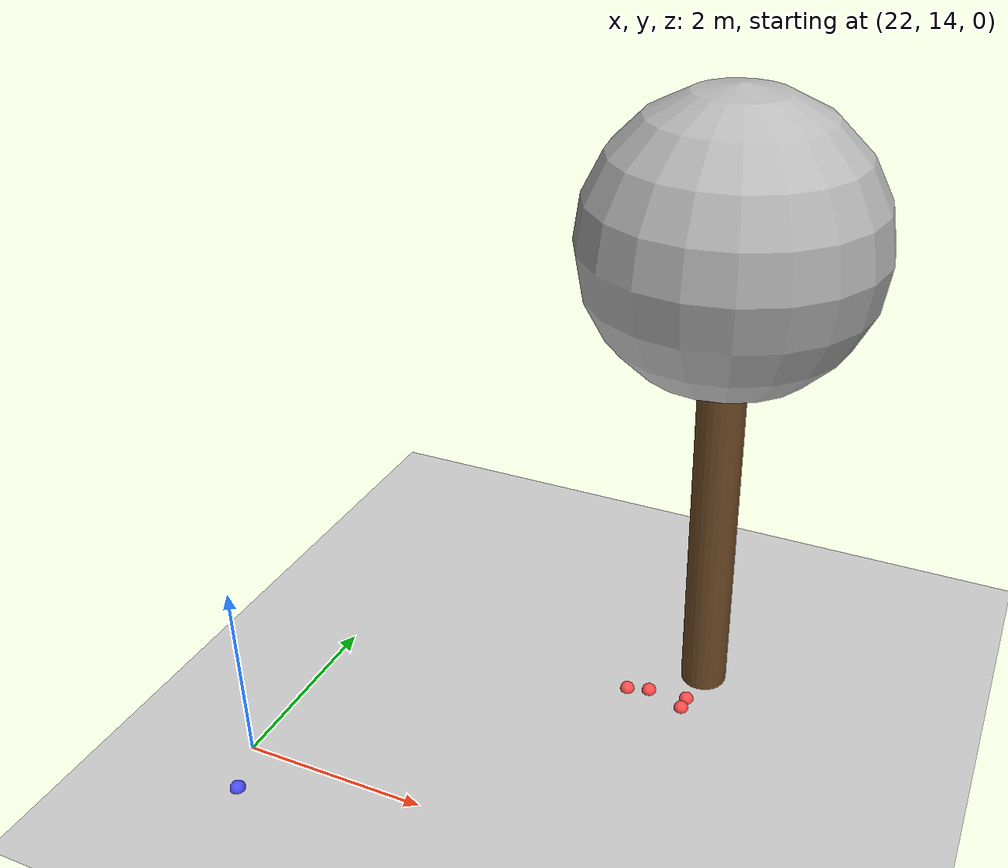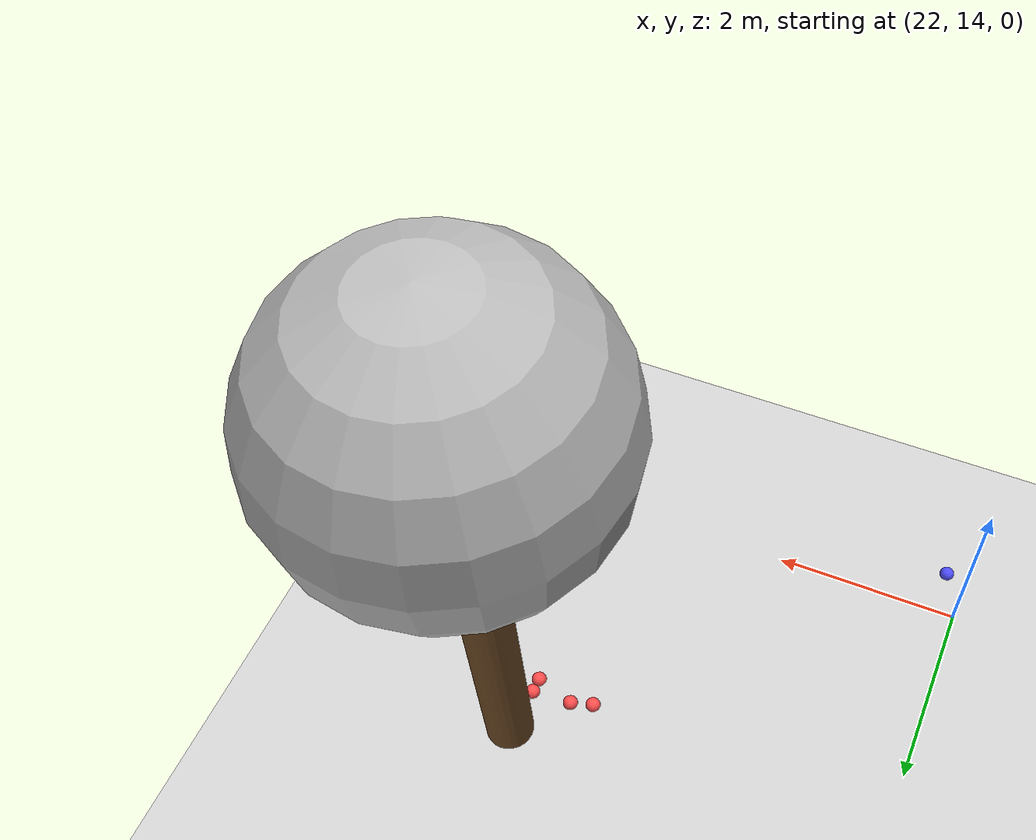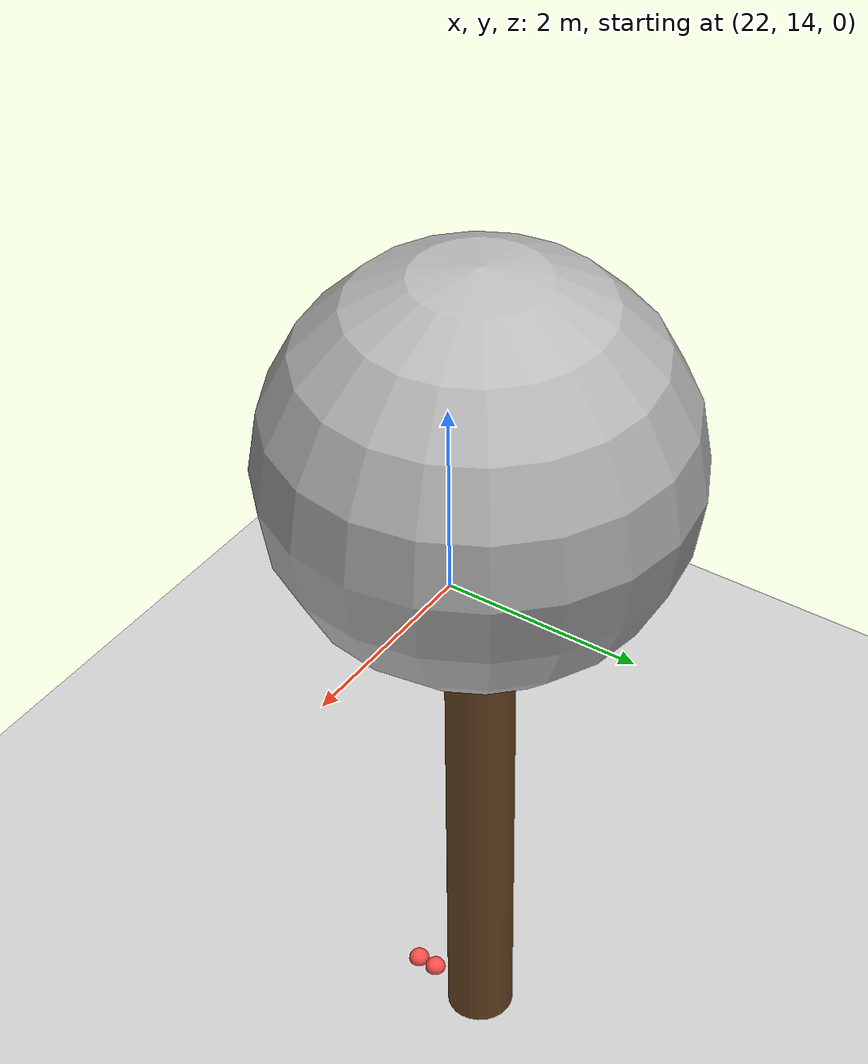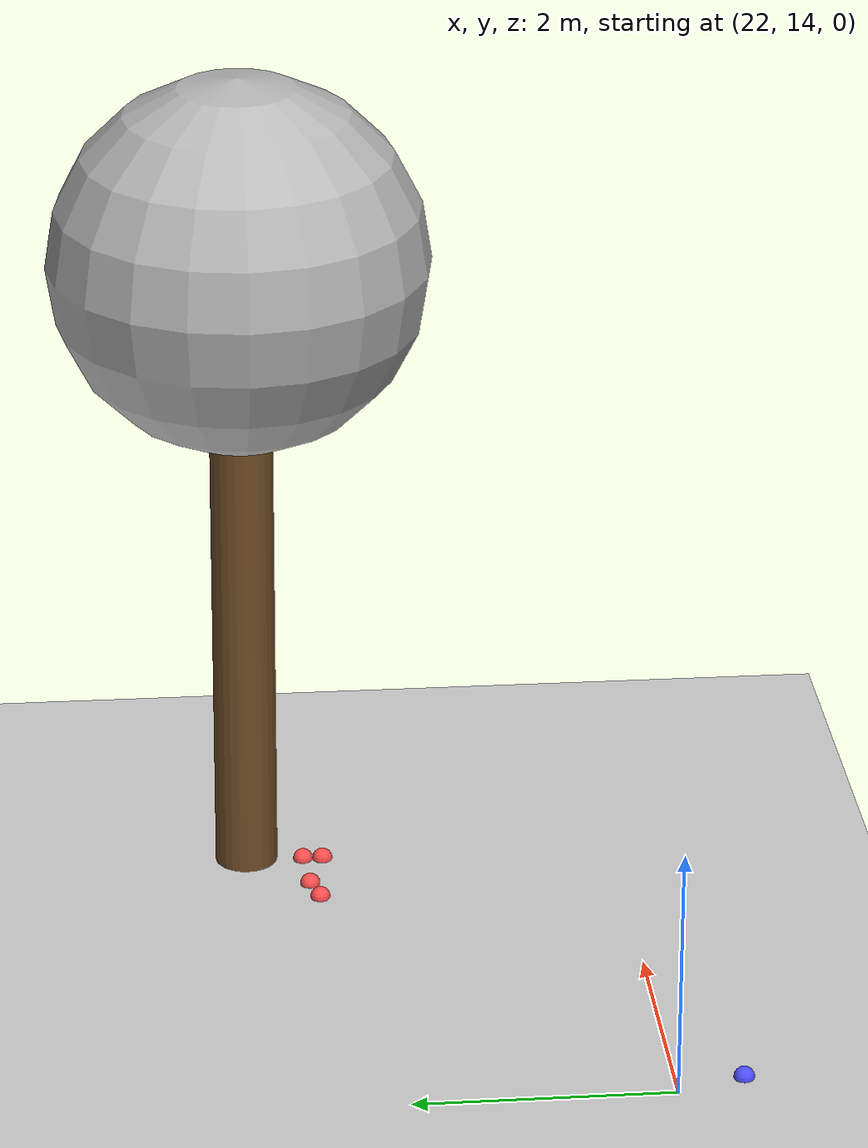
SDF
<sdf version="1.7">
 <world name="default">
  <model name="ground_plane">
   <static>1</static>
   <link name="link">
    <collision name="collision">
     <geometry><plane><normal>0 0 1</normal><size>100 100</size></plane></geometry>
     <surface>
      <contact><collide_bitmask>65535</collide_bitmask></contact>
      <friction><ode><mu>100</mu><mu2>50</mu2></ode></friction>
     </surface>
    </collision>
    <visual name="visual">
     <cast_shadows>0</cast_shadows>
     <geometry><plane><normal>0 0 1</normal><size>100 100</size></plane></geometry>
     <material>
      <script><uri>file://media/materials/scripts/gazebo.material</uri><name>Gazebo/Grey</name></script>
     </material>
    </visual>
   </link>
  </model>
  <model name="tree_simple_56">
   <static>1</static>
   <link name="link">
    <pose>0 0 0.1 0 -0 0</pose>
    <inertial>
     <mass>666</mass>
     <inertia>
      <ixx>0.0861167</ixx>
      <ixy>0</ixy>
      <ixz>0</ixz>
      <iyy>0.0861167</iyy>
      <iyz>0</iyz>
      <izz>0.0861167</izz>
     </inertia>
    </inertial>
    <collision name="collision_trunk">
     <pose>0 0 2 0 -0 0</pose>
     <geometry><cylinder><radius>0.25</radius><length>4</length></cylinder></geometry>
     <surface>
      <contact>
       <poissons_ratio>0.347</poissons_ratio>
       <elastic_modulus>8.8e+09</elastic_modulus>
       <ode><kp>100000</kp><kd>100</kd><max_vel>100</max_vel><min_depth>0.001</min_depth></ode>
      </contact>
      <friction>
       <torsional>
        <coefficient>1</coefficient>
        <use_patch_radius>0</use_patch_radius>
        <surface_radius>0.01</surface_radius>
       </torsional>
      </friction>
     </surface>
    </collision>
    <collision name="collision_treetop">
     <pose>0 0 5.2 0 -0 0</pose>
     <geometry><sphere><radius>1.5</radius></sphere></geometry>
     <surface>
      <contact>
       <poissons_ratio>0.347</poissons_ratio>
       <elastic_modulus>8.8e+09</elastic_modulus>
       <ode><kp>100000</kp><kd>100</kd><max_vel>100</max_vel><min_depth>0.001</min_depth></ode>
      </contact>
      <friction>
       <torsional>
        <coefficient>1</coefficient>
        <use_patch_radius>0</use_patch_radius>
        <surface_radius>0.01</surface_radius>
       </torsional>
      </friction>
     </surface>
    </collision>
    <visual name="trunk">
     <pose>0 0 2 0 -0 0</pose>
     <geometry><cylinder><radius>0.25</radius><length>4</length></cylinder></geometry>
     <material>
      <script>
       <uri>model://tree_simple/scripts</uri>
       <uri>model://tree_simple/materials/textures</uri>
       <name>TreeSimple/Trunk</name>
      </script>
     </material>
    </visual>
    <visual name="treetop">
     <pose>0 0 5.2 0 -0 0</pose>
     <geometry><sphere><radius>1.5</radius></sphere></geometry>
     <material>
      <script>
       <uri>model://tree_simple/scripts</uri>
       <uri>model://tree_simple/materials/textures</uri>
       <name>TreeSimple/Treetop</name>
      </script>
     </material>
    </visual>
   </link>
   <pose>26 17 -0.1 0 -0 0</pose>
  </model>
  <model name="seed_red_231">
   <link name="link">
    <inertial>
     <mass>1</mass>
     <inertia><ixx>0.1</ixx><ixy>0</ixy><ixz>0</ixz><iyy>0.1</iyy><iyz>0</iyz><izz>0.1</izz></inertia>
    </inertial>
    <visual name="visual">
     <geometry><sphere><radius>0.08</radius></sphere></geometry>
     <material>
      <script><name>Gazebo/Grey</name><uri>file://media/materials/scripts/gazebo.material</uri></script>
      <shader type="pixel"><normal_map>__default__</normal_map></shader>
      <ambient>1 0.3 0.3 1</ambient>
      <diffuse>0.7 0.7 0.7 1</diffuse>
      <specular>0.01 0.01 0.01 1</specular>
      <emissive>0 0 0 1</emissive>
     </material>
    </visual>
    <collision name="collision">
     <geometry><sphere><radius>0.0005</radius></sphere></geometry>
     <surface>
      <friction>
       <ode><mu>1</mu><mu2>1</mu2><fdir1>0 0 0</fdir1><slip1>0</slip1><slip2>0</slip2></ode>
       <torsional>
        <coefficient>1</coefficient>
        <patch_radius>0</patch_radius>
        <surface_radius>0</surface_radius>
        <use_patch_radius>1</use_patch_radius>
        <ode><slip>0</slip></ode>
       </torsional>
      </friction>
      <bounce><restitution_coefficient>0</restitution_coefficient><threshold>1e+06</threshold></bounce>
      <contact>
       <collide_without_contact>0</collide_without_contact>
       <collide_without_contact_bitmask>1</collide_without_contact_bitmask>
       <collide_bitmask>1</collide_bitmask>
       <ode>
        <soft_cfm>0</soft_cfm>
        <soft_erp>0.2</soft_erp>
        <kp>1e+13</kp>
        <kd>1</kd>
        <max_vel>0.01</max_vel>
        <min_depth>0</min_depth>
       </ode>
       <bullet>
        <split_impulse>1</split_impulse>
        <split_impulse_penetration_threshold>-0.01</split_impulse_penetration_threshold>
        <soft_cfm>0</soft_cfm>
        <soft_erp>0.2</soft_erp>
        <kp>1e+13</kp>
        <kd>1</kd>
       </bullet>
      </contact>
     </surface>
    </collision>
   </link>
   <static>0</static>
   <pose>25.9455 16.3842 0.0005 0 -0 0</pose>
  </model>
  <model name="seed_red_232">
   <link name="link">
    <inertial>
     <mass>1</mass>
     <inertia><ixx>0.1</ixx><ixy>0</ixy><ixz>0</ixz><iyy>0.1</iyy><iyz>0</iyz><izz>0.1</izz></inertia>
    </inertial>
    <visual name="visual">
     <geometry><sphere><radius>0.08</radius></sphere></geometry>
     <material>
      <script><name>Gazebo/Grey</name><uri>file://media/materials/scripts/gazebo.material</uri></script>
      <shader type="pixel"><normal_map>__default__</normal_map></shader>
      <ambient>1 0.3 0.3 1</ambient>
      <diffuse>0.7 0.7 0.7 1</diffuse>
      <specular>0.01 0.01 0.01 1</specular>
      <emissive>0 0 0 1</emissive>
     </material>
    </visual>
    <collision name="collision">
     <geometry><sphere><radius>0.0005</radius></sphere></geometry>
     <surface>
      <friction>
       <ode><mu>1</mu><mu2>1</mu2><fdir1>0 0 0</fdir1><slip1>0</slip1><slip2>0</slip2></ode>
       <torsional>
        <coefficient>1</coefficient>
        <patch_radius>0</patch_radius>
        <surface_radius>0</surface_radius>
        <use_patch_radius>1</use_patch_radius>
        <ode><slip>0</slip></ode>
       </torsional>
      </friction>
      <bounce><restitution_coefficient>0</restitution_coefficient><threshold>1e+06</threshold></bounce>
      <contact>
       <collide_without_contact>0</collide_without_contact>
       <collide_without_contact_bitmask>1</collide_without_contact_bitmask>
       <collide_bitmask>1</collide_bitmask>
       <ode>
        <soft_cfm>0</soft_cfm>
        <soft_erp>0.2</soft_erp>
        <kp>1e+13</kp>
        <kd>1</kd>
        <max_vel>0.01</max_vel>
        <min_depth>0</min_depth>
       </ode>
       <bullet>
        <split_impulse>1</split_impulse>
        <split_impulse_penetration_threshold>-0.01</split_impulse_penetration_threshold>
        <soft_cfm>0</soft_cfm>
        <soft_erp>0.2</soft_erp>
        <kp>1e+13</kp>
        <kd>1</kd>
       </bullet>
      </contact>
     </surface>
    </collision>
   </link>
   <static>0</static>
   <pose>25.9506 16.5426 0.0005 0 -0 0</pose>
  </model>
  <model name="seed_red_233">
   <link name="link">
    <inertial>
     <mass>1</mass>
     <inertia><ixx>0.1</ixx><ixy>0</ixy><ixz>0</ixz><iyy>0.1</iyy><iyz>0</iyz><izz>0.1</izz></inertia>
    </inertial>
    <visual name="visual">
     <geometry><sphere><radius>0.08</radius></sphere></geometry>
     <material>
      <script><name>Gazebo/Grey</name><uri>file://media/materials/scripts/gazebo.material</uri></script>
      <shader type="pixel"><normal_map>__default__</normal_map></shader>
      <ambient>1 0.3 0.3 1</ambient>
      <diffuse>0.7 0.7 0.7 1</diffuse>
      <specular>0.01 0.01 0.01 1</specular>
      <emissive>0 0 0 1</emissive>
     </material>
    </visual>
    <collision name="collision">
     <geometry><sphere><radius>0.0005</radius></sphere></geometry>
     <surface>
      <friction>
       <ode><mu>1</mu><mu2>1</mu2><fdir1>0 0 0</fdir1><slip1>0</slip1><slip2>0</slip2></ode>
       <torsional>
        <coefficient>1</coefficient>
        <patch_radius>0</patch_radius>
        <surface_radius>0</surface_radius>
        <use_patch_radius>1</use_patch_radius>
        <ode><slip>0</slip></ode>
       </torsional>
      </friction>
      <bounce><restitution_coefficient>0</restitution_coefficient><threshold>1e+06</threshold></bounce>
      <contact>
       <collide_without_contact>0</collide_without_contact>
       <collide_without_contact_bitmask>1</collide_without_contact_bitmask>
       <collide_bitmask>1</collide_bitmask>
       <ode>
        <soft_cfm>0</soft_cfm>
        <soft_erp>0.2</soft_erp>
        <kp>1e+13</kp>
        <kd>1</kd>
        <max_vel>0.01</max_vel>
        <min_depth>0</min_depth>
       </ode>
       <bullet>
        <split_impulse>1</split_impulse>
        <split_impulse_penetration_threshold>-0.01</split_impulse_penetration_threshold>
        <soft_cfm>0</soft_cfm>
        <soft_erp>0.2</soft_erp>
        <kp>1e+13</kp>
        <kd>1</kd>
       </bullet>
      </contact>
     </surface>
    </collision>
   </link>
   <static>0</static>
   <pose>25.523 16.5129 0.0005 0 -0 0</pose>
  </model>
  <model name="seed_red_236">
   <link name="link">
    <inertial>
     <mass>1</mass>
     <inertia><ixx>0.1</ixx><ixy>0</ixy><ixz>0</ixz><iyy>0.1</iyy><iyz>0</iyz><izz>0.1</izz></inertia>
    </inertial>
    <visual name="visual">
     <geometry><sphere><radius>0.08</radius></sphere></geometry>
     <material>
      <script><name>Gazebo/Grey</name><uri>file://media/materials/scripts/gazebo.material</uri></script>
      <shader type="pixel"><normal_map>__default__</normal_map></shader>
      <ambient>1 0.3 0.3 1</ambient>
      <diffuse>0.7 0.7 0.7 1</diffuse>
      <specular>0.01 0.01 0.01 1</specular>
      <emissive>0 0 0 1</emissive>
     </material>
    </visual>
    <collision name="collision">
     <geometry><sphere><radius>0.0005</radius></sphere></geometry>
     <surface>
      <friction>
       <ode><mu>1</mu><mu2>1</mu2><fdir1>0 0 0</fdir1><slip1>0</slip1><slip2>0</slip2></ode>
       <torsional>
        <coefficient>1</coefficient>
        <patch_radius>0</patch_radius>
        <surface_radius>0</surface_radius>
        <use_patch_radius>1</use_patch_radius>
        <ode><slip>0</slip></ode>
       </torsional>
      </friction>
      <bounce><restitution_coefficient>0</restitution_coefficient><threshold>1e+06</threshold></bounce>
      <contact>
       <collide_without_contact>0</collide_without_contact>
       <collide_without_contact_bitmask>1</collide_without_contact_bitmask>
       <collide_bitmask>1</collide_bitmask>
       <ode>
        <soft_cfm>0</soft_cfm>
        <soft_erp>0.2</soft_erp>
        <kp>1e+13</kp>
        <kd>1</kd>
        <max_vel>0.01</max_vel>
        <min_depth>0</min_depth>
       </ode>
       <bullet>
        <split_impulse>1</split_impulse>
        <split_impulse_penetration_threshold>-0.01</split_impulse_penetration_threshold>
        <soft_cfm>0</soft_cfm>
        <soft_erp>0.2</soft_erp>
        <kp>1e+13</kp>
        <kd>1</kd>
       </bullet>
      </contact>
     </surface>
    </collision>
   </link>
   <static>0</static>
   <pose>25.2896 16.4465 0.0005 0 -0 0</pose>
  </model>
  <model name="seed_blue_138">
   <link name="link">
    <inertial>
     <mass>1</mass>
     <inertia><ixx>0.1</ixx><ixy>0</ixy><ixz>0</ixz><iyy>0.1</iyy><iyz>0</iyz><izz>0.1</izz></inertia>
    </inertial>
    <visual name="visual">
     <geometry><sphere><radius>0.08</radius></sphere></geometry>
     <material>
      <script><name>Gazebo/Grey</name><uri>file://media/materials/scripts/gazebo.material</uri></script>
      <shader type="pixel"><normal_map>__default__</normal_map></shader>
      <ambient>0.3 0.3 1 1</ambient>
      <diffuse>0.7 0.7 0.7 1</diffuse>
      <specular>0.01 0.01 0.01 1</specular>
      <emissive>0 0 0 1</emissive>
     </material>
    </visual>
    <collision name="collision">
     <geometry><sphere><radius>0.0005</radius></sphere></geometry>
     <surface>
      <friction>
       <ode><mu>1</mu><mu2>1</mu2><fdir1>0 0 0</fdir1><slip1>0</slip1><slip2>0</slip2></ode>
       <torsional>
        <coefficient>1</coefficient>
        <patch_radius>0</patch_radius>
        <surface_radius>0</surface_radius>
        <use_patch_radius>1</use_patch_radius>
        <ode><slip>0</slip></ode>
       </torsional>
      </friction>
      <bounce><restitution_coefficient>0</restitution_coefficient><threshold>1e+06</threshold></bounce>
      <contact>
       <collide_without_contact>0</collide_without_contact>
       <collide_without_contact_bitmask>1</collide_without_contact_bitmask>
       <collide_bitmask>1</collide_bitmask>
       <ode>
        <soft_cfm>0</soft_cfm>
        <soft_erp>0.2</soft_erp>
        <kp>1e+13</kp>
        <kd>1</kd>
        <max_vel>0.01</max_vel>
        <min_depth>0</min_depth>
       </ode>
       <bullet>
        <split_impulse>1</split_impulse>
        <split_impulse_penetration_threshold>-0.01</split_impulse_penetration_threshold>
        <soft_cfm>0</soft_cfm>
        <soft_erp>0.2</soft_erp>
        <kp>1e+13</kp>
        <kd>1</kd>
       </bullet>
      </contact>
     </surface>
    </collision>
   </link>
   <static>0</static>
   <pose>22.1998 13.4746 0.0005 0 -0 0</pose>
  </model>
 </world>
</sdf>
